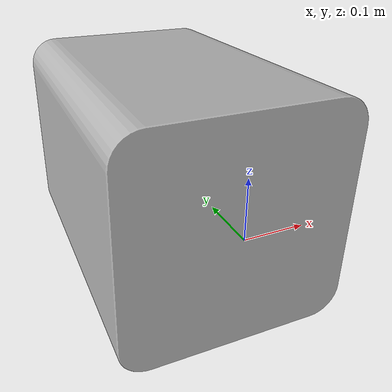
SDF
<?xml version="1.0" ?>
<sdf version="1.4">
    <model name="picket_m">
      <link name="body">
        <visual name="visual">
          <geometry>
            <mesh><uri>model://pickets/picket_m/picket_m.dae</uri></mesh>
          </geometry>
        </visual>
        <collision name="picket_m">
          <pose>0 0.275 0 1.5708 0 0</pose>
          <geometry>
            <box><size>0.397 0.397 0.55</size></box>
          </geometry>
          <surface>
            <friction>
              <ode>
                <mu>100</mu>
                <mu2>50</mu2>
              </ode>
            </friction>
          </surface>
        </collision>
      </link>
    </model>
</sdf>
